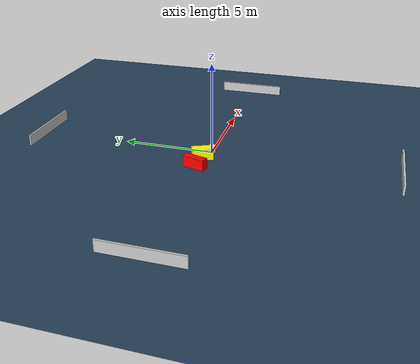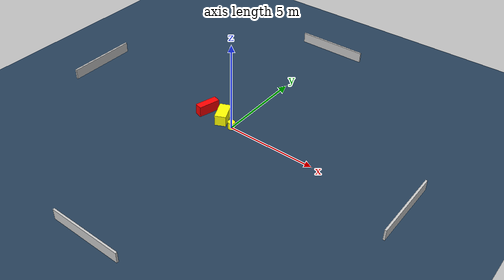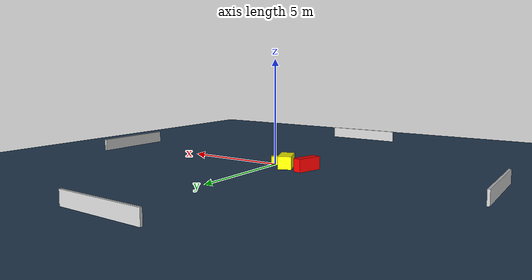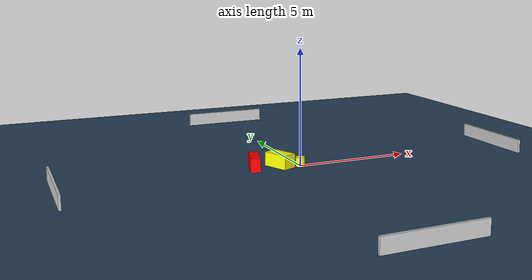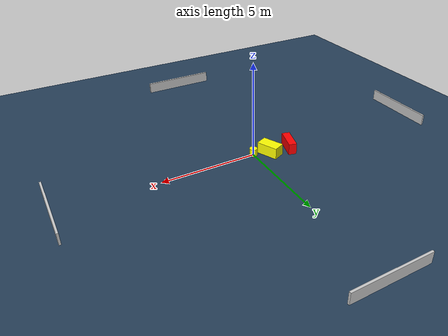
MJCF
<?xml version="1.0" ?>
<mujoco model="generated_environment">
  <option timestep="0.01" integrator="RK4" cone="elliptic"/>
  <default>
    <geom density="1"/>
  </default>
  <asset>
    <texture builtin="gradient" height="3072" name="skybox" rgb1="0.3 0.5 0.7" rgb2="0 0 0" type="skybox" width="512"/>
    <texture builtin="checker" height="300" name="groundplane" rgb1="0.2 0.3 0.4" rgb2="0.1 0.2 0.3" type="2d" width="300"/>
    <material name="groundplane" reflectance="0.2" texrepeat="5 5" texture="groundplane"/>
  </asset>
  <worldbody>
    <light dir="0 0 -1" directional="true" pos="0 0 1.5"/>
    <geom condim="3" friction="0.5 0.005 0.001" material="groundplane" name="floor" pos="0 0 0" size="0 0 0.05" type="plane"/>
    <body name="walls">
      <geom name="wall_1" condim="4" pos="-10.0 0.0 0.3" rgba="0.800000011920929 0.800000011920929 0.800000011920929 1.0" size="0.05 2.0 0.3" type="box"/>
      <geom name="wall_2" condim="4" pos="10.0 0.0 0.3" rgba="0.800000011920929 0.800000011920929 0.800000011920929 1.0" size="0.05 2.0 0.3" type="box"/>
      <geom name="wall_3" condim="4" pos="0.0 -10.0 0.3" rgba="0.800000011920929 0.800000011920929 0.800000011920929 1.0" size="2.0 0.05 0.3" type="box"/>
      <geom name="wall_4" condim="4" pos="0.0 10.0 0.3" rgba="0.800000011920929 0.800000011920929 0.800000011920929 1.0" size="2.0 0.05 0.3" type="box"/>
    </body>
    <body name="robot">
      <joint name="joint_x" type="slide" pos="0 0 0" axis="1 0 0"/>
      <joint name="joint_y" type="slide" pos="0 0 0" axis="0 1 0"/>
      <geom name="robot" type="cylinder" pos="0.0 0.0 0.2" size="0.2 0.2 0.0" mass="5.0" friction="1.0 0.005 0.0001" condim="4" rgba="1.0 1.0 0.0 1.0"/>
    </body>
    <body name="obstacle_1_movable">
      <geom name="obstacle_1_movable" condim="4" pos="-0.8163487904763324 0.29084053260777737 0.3" euler="0 0 204.1353309418349" friction="0.0 0.005 0.001" rgba="1.0 1.0 0.0 1.0" size="0.31050535824256287 0.5710307745726079 0.3" type="box" mass="0.1"/>
      <joint type="free"/>
    </body>
    <body name="obstacle_2_static">
      <geom name="obstacle_2_static" condim="4" pos="-1.944990707523753 0.3547598564911403 0.3" euler="0 0 254.46234667077348" friction="0.0 0.005 0.001" rgba="1.0 0.0 0.0 1.0" size="0.6177351326370439 0.20705754944641538 0.3" type="box"/>
    </body>
  </worldbody>
  <actuator>
    <motor name="actuator_x" joint="joint_x" gear="1" ctrlrange="-1 1"/>
    <motor name="actuator_y" joint="joint_y" gear="1" ctrlrange="-1 1"/>
  </actuator>
</mujoco>
